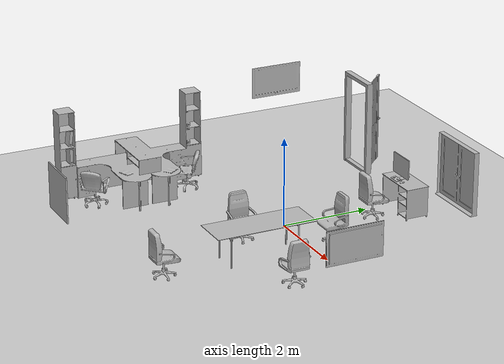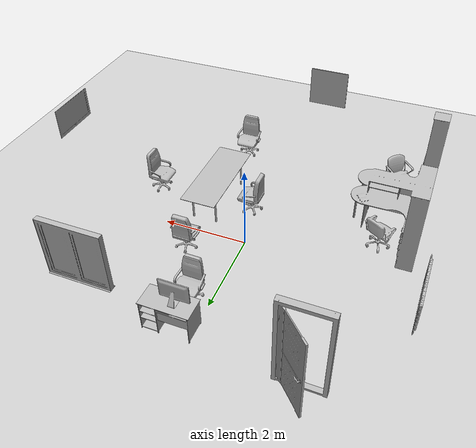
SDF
<sdf version="1.4">
 <world name="default">
  <light name="sun" type="directional">
   <pose>0 0 10 0 -0 0</pose>
   <diffuse>0.8 0.8 0.8 1</diffuse>
   <specular>0.2 0.2 0.2 1</specular>
   <attenuation>
    <range>1000</range>
    <constant>0.9</constant>
    <linear>0.01</linear>
    <quadratic>0.001</quadratic>
   </attenuation>
   <direction>-0.5 0.1 -0.9</direction>
  </light>
  <model name="ground_plane">
   <static>1</static>
   <link name="link">
    <collision name="collision">
     <geometry><plane><normal>0 0 1</normal><size>100 100</size></plane></geometry>
     <surface><friction><ode><mu>100</mu><mu2>50</mu2></ode></friction></surface>
    </collision>
    <visual name="visual">
     <cast_shadows>0</cast_shadows>
     <geometry><plane><normal>0 0 1</normal><size>100 100</size></plane></geometry>
     <material>
      <script><uri>file://media/materials/scripts/gazebo.material</uri><name>Gazebo/Grey</name></script>
     </material>
    </visual>
    <velocity_decay><linear>0</linear><angular>0</angular></velocity_decay>
   </link>
  </model>
  <physics type="ode">
   <max_step_size>0.001</max_step_size>
   <real_time_factor>1</real_time_factor>
   <real_time_update_rate>1000</real_time_update_rate>
   <gravity>0 0 -9.8</gravity>
  </physics>
  <scene><ambient>0.4 0.4 0.4 1</ambient><background>0.7 0.7 0.7 1</background><shadows>1</shadows></scene>
  <spherical_coordinates>
   <surface_model>EARTH_WGS84</surface_model>
   <latitude_deg>0</latitude_deg>
   <longitude_deg>0</longitude_deg>
   <elevation>0</elevation>
   <heading_deg>0</heading_deg>
  </spherical_coordinates>
  <model name="695_0">
   <pose>-2.8304 -2.124 0.01 0 -0 0</pose>
   <static>1</static>
   <link name="link">
    <collision name="collision"><geometry><box><size>1.7501 3.39494 2</size></box></geometry></collision>
    <visual name="visual"><geometry><mesh><uri>model://695/695.dae</uri></mesh></geometry></visual>
    <velocity_decay><linear>0</linear><angular>0</angular></velocity_decay>
   </link>
  </model>
  <model name="s__476_0">
   <pose>0.457601 2.724 0.01 0 0 -1.5708</pose>
   <static>1</static>
   <link name="link">
    <collision name="collision"><geometry><box><size>0.540146 1.09988 2</size></box></geometry></collision>
    <visual name="visual"><geometry><mesh><uri>model://s__476/s__476.dae</uri></mesh></geometry></visual>
    <velocity_decay><linear>0</linear><angular>0</angular></velocity_decay>
   </link>
  </model>
  <model name="189_0">
   <pose>0.3376 2.676 0.742201 0 0 -1.5708</pose>
   <static>1</static>
   <link name="link">
    <collision name="collision"><geometry><box><size>0.359507 0.6495 2</size></box></geometry></collision>
    <visual name="visual"><geometry><mesh><uri>model://189/189.dae</uri></mesh></geometry></visual>
    <velocity_decay><linear>0</linear><angular>0</angular></velocity_decay>
   </link>
  </model>
  <model name="106_0">
   <pose>0.4096 1.968 0.01 0 0 -1.58399</pose>
   <static>1</static>
   <link name="link">
    <collision name="collision"><geometry><box><size>0.550393 0.596196 2</size></box></geometry></collision>
    <visual name="visual"><geometry><mesh><uri>model://106/106.dae</uri></mesh></geometry></visual>
    <velocity_decay><linear>0</linear><angular>0</angular></velocity_decay>
   </link>
  </model>
  <model name="514_0">
   <pose>1.2016 -1.188 0.01 0 -0 0</pose>
   <static>1</static>
   <link name="link">
    <collision name="collision"><geometry><box><size>0.85 2.25 2</size></box></geometry></collision>
    <visual name="visual"><geometry><mesh><uri>model://514/514.dae</uri></mesh></geometry></visual>
    <velocity_decay><linear>0</linear><angular>0</angular></velocity_decay>
   </link>
  </model>
  <model name="106_1">
   <pose>0.3136 -1.152 0.01 0 0 -3.14159</pose>
   <static>1</static>
   <link name="link">
    <collision name="collision"><geometry><box><size>0.550393 0.596196 2</size></box></geometry></collision>
    <visual name="visual"><geometry><mesh><uri>model://106/106.dae</uri></mesh></geometry></visual>
    <velocity_decay><linear>0</linear><angular>0</angular></velocity_decay>
   </link>
  </model>
  <model name="106_2">
   <pose>1.1896 0.551999 0.01 0 -0 1.56535</pose>
   <static>1</static>
   <link name="link">
    <collision name="collision"><geometry><box><size>0.550393 0.596196 2</size></box></geometry></collision>
    <visual name="visual"><geometry><mesh><uri>model://106/106.dae</uri></mesh></geometry></visual>
    <velocity_decay><linear>0</linear><angular>0</angular></velocity_decay>
   </link>
  </model>
  <model name="106_3">
   <pose>1.2376 -3.3308 0.01 0 0 -1.5708</pose>
   <static>1</static>
   <link name="link">
    <collision name="collision"><geometry><box><size>0.550393 0.596196 2</size></box></geometry></collision>
    <visual name="visual"><geometry><mesh><uri>model://106/106.dae</uri></mesh></geometry></visual>
    <velocity_decay><linear>0</linear><angular>0</angular></velocity_decay>
   </link>
  </model>
  <model name="106_4">
   <pose>2.70236 -1.14 0.01 0 -0 0</pose>
   <static>1</static>
   <link name="link">
    <collision name="collision"><geometry><box><size>0.550393 0.596196 2</size></box></geometry></collision>
    <visual name="visual"><geometry><mesh><uri>model://106/106.dae</uri></mesh></geometry></visual>
    <velocity_decay><linear>0</linear><angular>0</angular></velocity_decay>
   </link>
  </model>
  <model name="228_0">
   <pose>-3.96976 1.776 1.43021 0 -0 0</pose>
   <static>1</static>
   <link name="link">
    <collision name="collision"><geometry><box><size>0.05 1.24002 2</size></box></geometry></collision>
    <visual name="visual"><geometry><mesh><uri>model://228/228.dae</uri></mesh></geometry></visual>
    <velocity_decay><linear>0</linear><angular>0</angular></velocity_decay>
   </link>
  </model>
  <model name="228_1">
   <pose>4.95492 -1.00799 1.3872 0 0 -3.14159</pose>
   <static>1</static>
   <link name="link">
    <collision name="collision"><geometry><box><size>0.05 1.24002 2</size></box></geometry></collision>
    <visual name="visual"><geometry><mesh><uri>model://228/228.dae</uri></mesh></geometry></visual>
    <velocity_decay><linear>0</linear><angular>0</angular></velocity_decay>
   </link>
  </model>
  <model name="781_0">
   <pose>-0.442397 -4.93905 1.01 0 -0 1.5708</pose>
   <static>1</static>
   <link name="link">
    <collision name="collision"><geometry><box><size>0.03 1 2</size></box></geometry></collision>
    <visual name="visual"><geometry><mesh><uri>model://781/781.dae</uri></mesh></geometry></visual>
    <velocity_decay><linear>0</linear><angular>0</angular></velocity_decay>
   </link>
  </model>
  <model name="209_0">
   <pose>2.2576 2.9128 0.81 0 0 -1.5708</pose>
   <static>1</static>
   <link name="link">
    <collision name="collision"><geometry><box><size>0.175 1.4 2</size></box></geometry></collision>
    <visual name="visual"><geometry><mesh><uri>model://209/209.dae</uri></mesh></geometry></visual>
    <velocity_decay><linear>0</linear><angular>0</angular></velocity_decay>
   </link>
  </model>
  <model name="760_0">
   <pose>-2.3093 3.06161 0 0 0 -1.5708</pose>
   <static>1</static>
   <link name="link">
    <collision name="collision"><geometry><box><size>0.719998 1.06 2</size></box></geometry></collision>
    <visual name="visual"><geometry><mesh><uri>model://760/760.dae</uri></mesh></geometry></visual>
    <velocity_decay><linear>0</linear><angular>0</angular></velocity_decay>
   </link>
  </model>
 </world>
</sdf>
